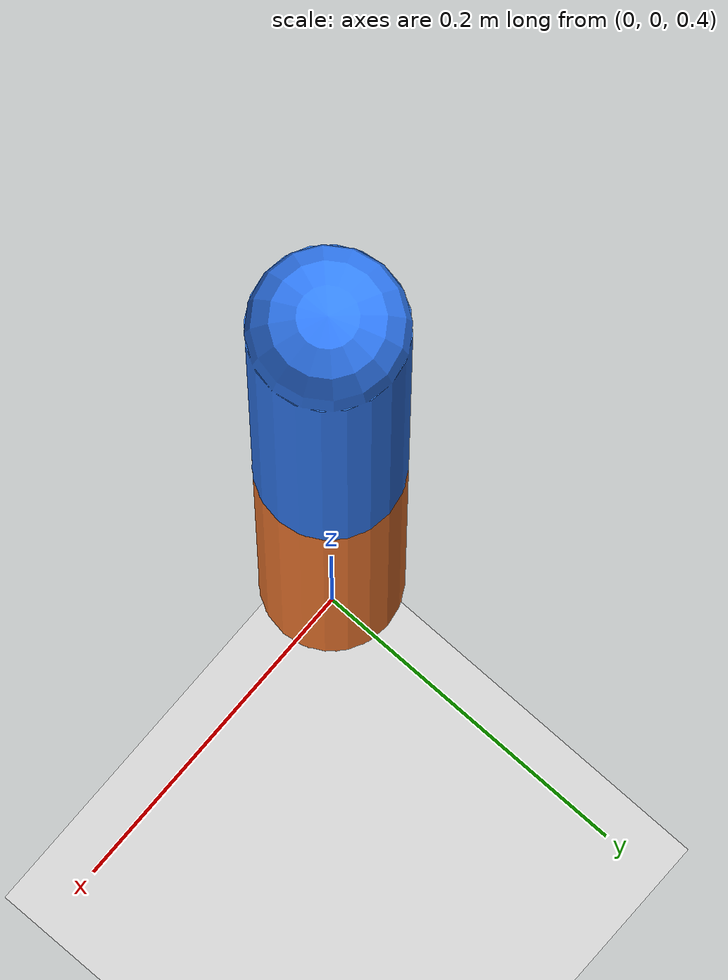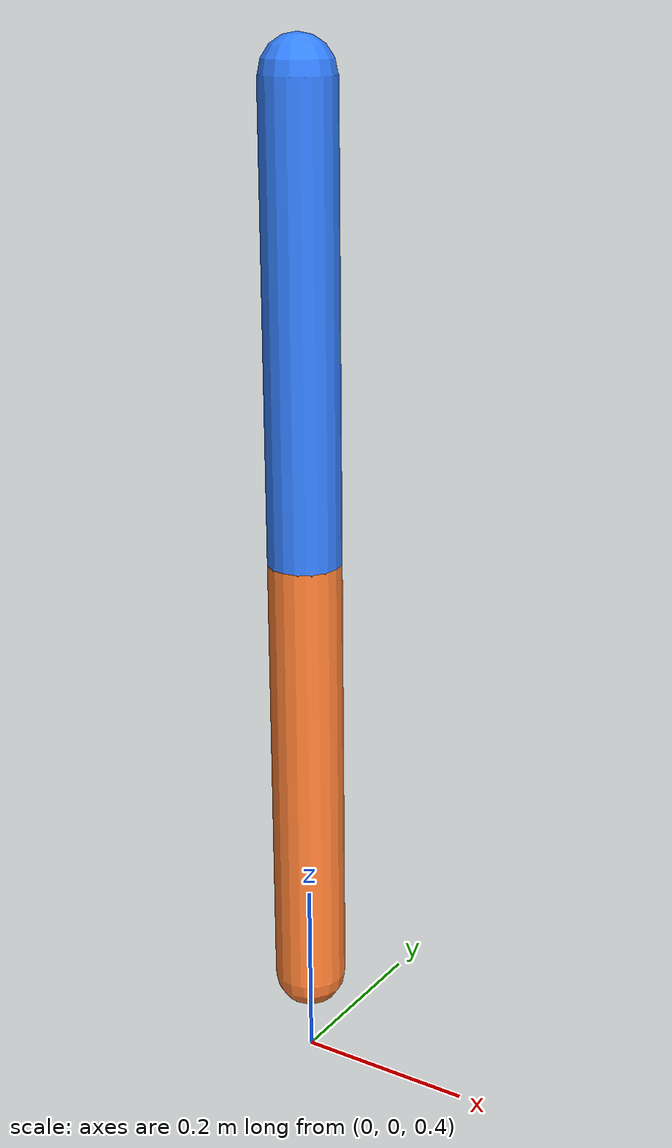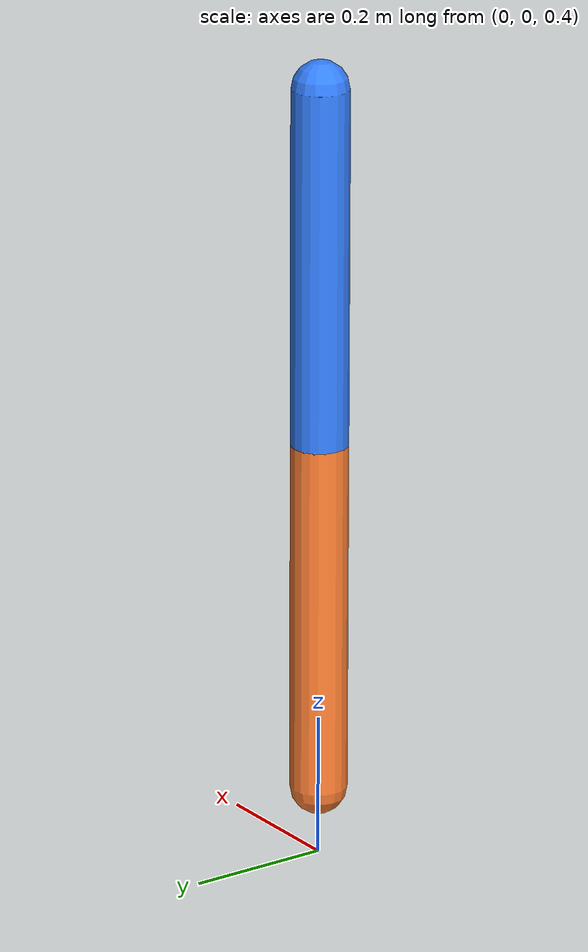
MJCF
<mujoco>
    #object를 놓을 world 생성
  <worldbody>
    #deploy light pos="x y z",
    #dir : direction of light
    <light pos="0 0 3" dir="0 0 -1"/>
    #geom : type : box, sphere, capsule, cylinder, plane
    #size : "x y grid"
    #rgva : "r g b a", a: 투명도
    #바닥 생성
    <geom type="plane" size="3 3 0.1" rgba="0.8 0.8 0.8 1"/>

    #body : pos : "x y z" 시작점의 좌표
    #joint : name : 관절 이름, type : 관절 종류, axis : 회전축, damping : 감쇠계수(저항)
    <body pos="0 0 1.5">
      <joint name="shoulder" type="hinge" axis="0 1 0" damping="0.5"/>
      <geom type="capsule" fromto="0 0 0 0 0 -0.5" size="0.04" rgba="0.2 0.5 1 1"/>

      #capsule : fromto = "a b c d e f" 앞의 세개의 좌표가 시작이고 뒤의 세개의 좌표가 끝점,
      #size : 반지름
      #그리고 상위 body 안에 또 body를 넣어주면 관절이 연결된 구조가 됨
      <body pos="0 0 -0.5">
        <joint name="elbow" type="hinge" axis="0 1 0" damping="0.5"/>
        <geom type="capsule" fromto="0 0 0 0 0 -0.5" size="0.04" rgba="1 0.5 0.2 1"/>
      </body>
    </body>
  </worldbody>

  #관절 모터
  #gear : 모터의 힘을 관절에 전달하는 비율
  #ctrlrange : 모터의 제어 범위(슬라이더로 줄 수 있는 값의 범위)
  <actuator>
    <motor name = "shoulder_motor" joint="shoulder" gear="20" ctrlrange="-1 1"/>
    <motor name = "elbow_motor" joint="elbow" gear="20" ctrlrange="-1 1"/>
  </actuator>
</mujoco>
